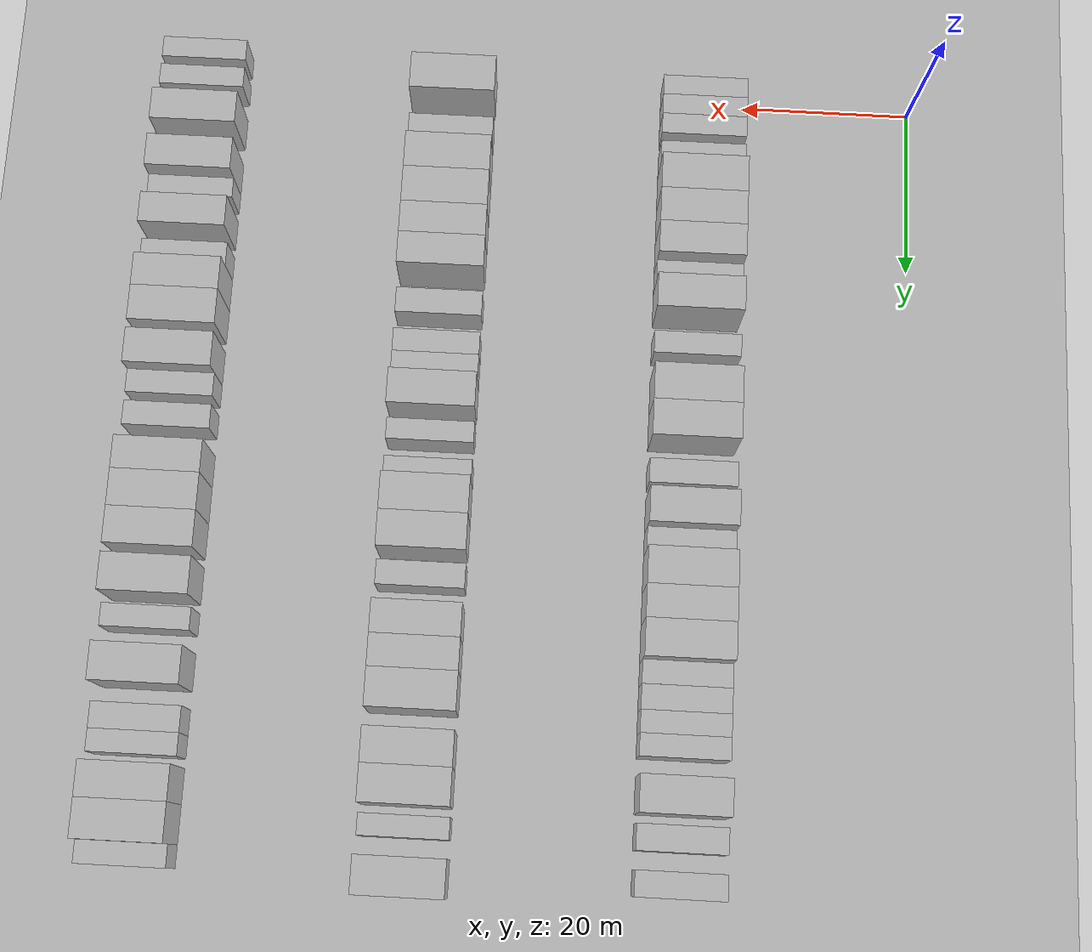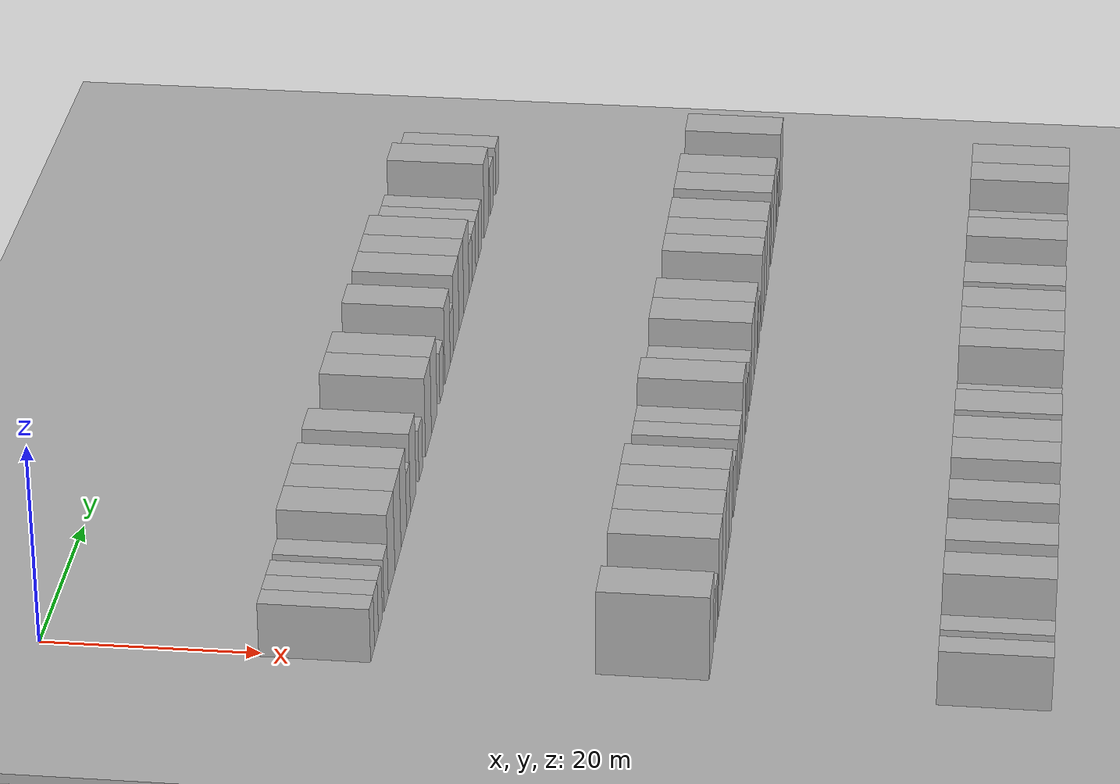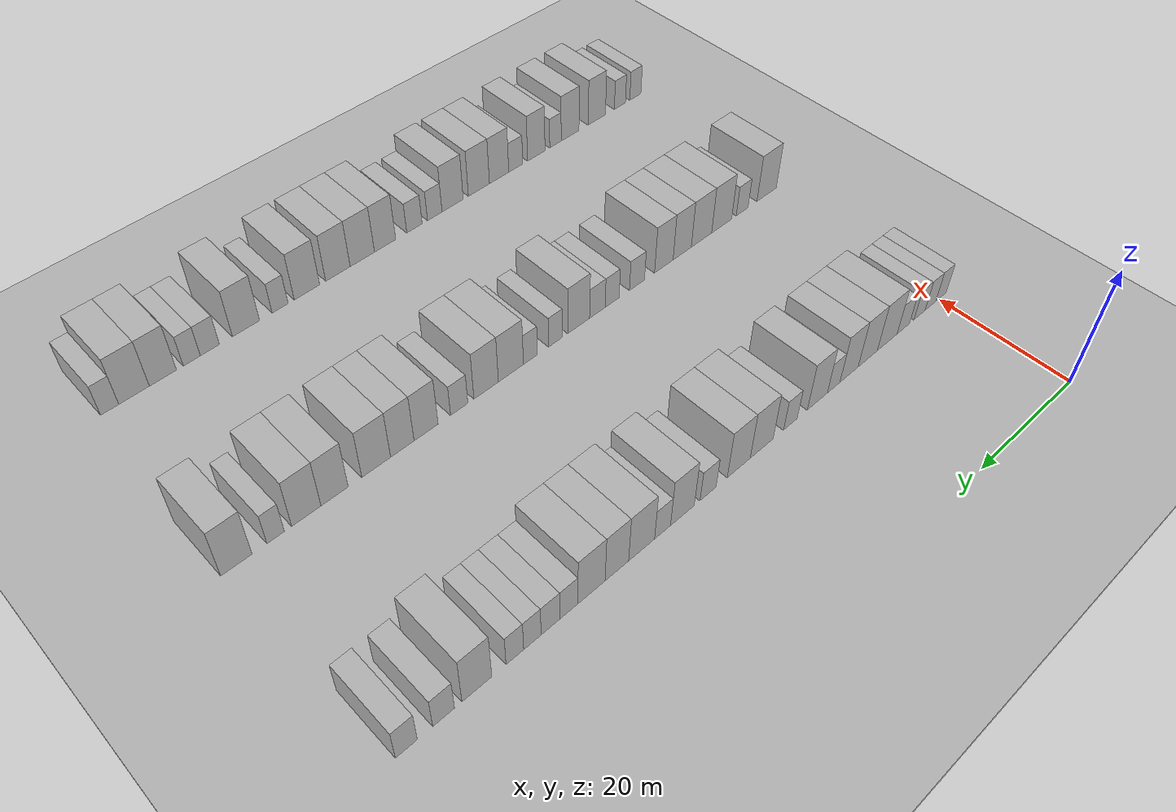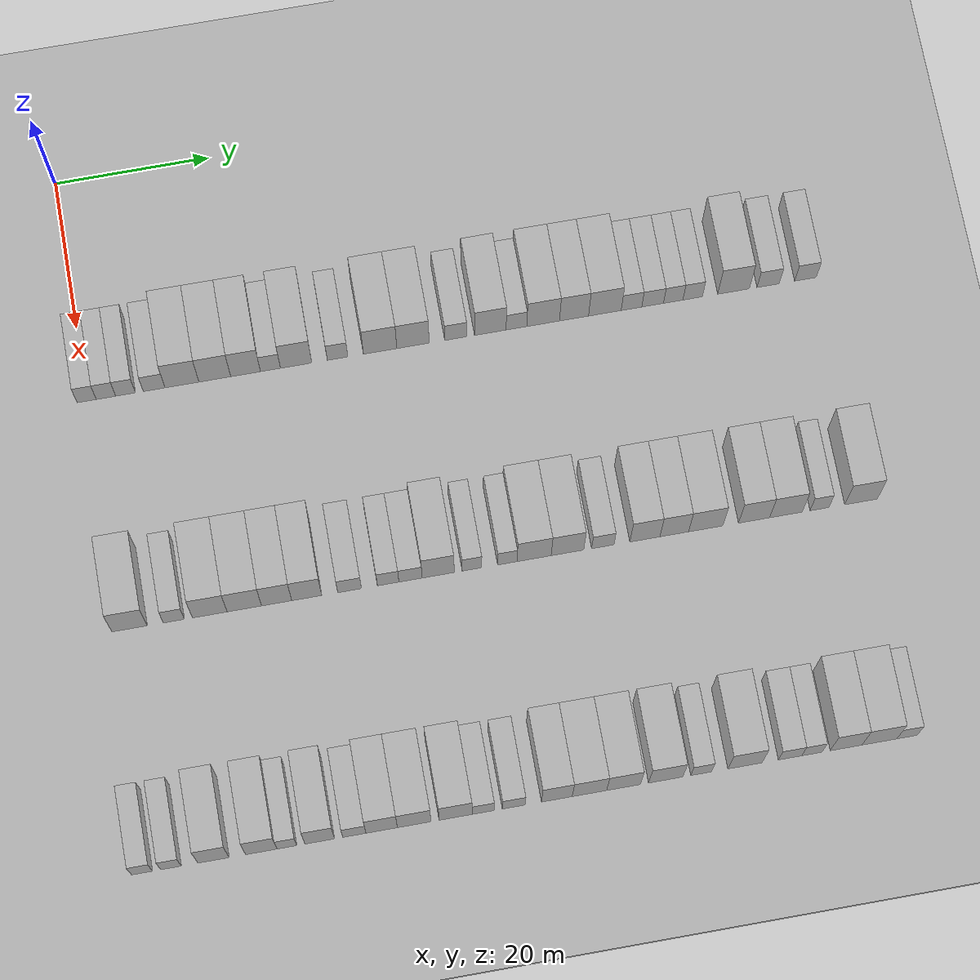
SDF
<sdf version="1.6">
 <world name="default">
  <include><name>ground_plane_1</name><uri>model://HANNAS_ground_plane</uri></include>
  <include>
   <name>ground_plane_2</name>
   <uri>model://HANNAS_ground_plane</uri>
   <pose>100 0 0  0 0 0</pose>
  </include>
  <model name="building_74">
   <static>1</static>
   <pose>25.0000 -0.0359 0 0.000000 0.000000 0.000000</pose>
   <link name="link">
    <pose>0 0 3.00 0 0 0</pose>
    <collision name="collision"><geometry><box><size>10.0000 2.4319 6.0000</size></box></geometry></collision>
    <visual name="visual">
     <cast_shadows>0</cast_shadows>
     <geometry><box><size>10.0000 2.4319 6.0000</size></box></geometry>
     <material>
      <script>
       <uri>model://HANNAS_wall/materials/scripts</uri>
       <uri>model://HANNAS_wall/materials/textures</uri>
       <name>vrc/HANNAS_wall</name>
      </script>
     </material>
    </visual>
   </link>
  </model>
  <model name="building_75">
   <static>1</static>
   <pose>25.0000 2.4158 0 0.000000 0.000000 0.000000</pose>
   <link name="link">
    <pose>0 0 3.00 0 0 0</pose>
    <collision name="collision"><geometry><box><size>10.0000 2.4715 6.0000</size></box></geometry></collision>
    <visual name="visual">
     <cast_shadows>0</cast_shadows>
     <geometry><box><size>10.0000 2.4715 6.0000</size></box></geometry>
     <material>
      <script>
       <uri>model://HANNAS_wall/materials/scripts</uri>
       <uri>model://HANNAS_wall/materials/textures</uri>
       <name>vrc/HANNAS_wall</name>
      </script>
     </material>
    </visual>
   </link>
  </model>
  <model name="building_76">
   <static>1</static>
   <pose>25.0000 4.9023 0 0.000000 0.000000 0.000000</pose>
   <link name="link">
    <pose>0 0 3.00 0 0 0</pose>
    <collision name="collision"><geometry><box><size>10.0000 2.5016 6.0000</size></box></geometry></collision>
    <visual name="visual">
     <cast_shadows>0</cast_shadows>
     <geometry><box><size>10.0000 2.5016 6.0000</size></box></geometry>
     <material>
      <script>
       <uri>model://HANNAS_wall/materials/scripts</uri>
       <uri>model://HANNAS_wall/materials/textures</uri>
       <name>vrc/HANNAS_wall</name>
      </script>
     </material>
    </visual>
   </link>
  </model>
  <model name="building_77">
   <static>1</static>
   <pose>25.0000 8.5384 0 0.000000 0.000000 0.000000</pose>
   <link name="link">
    <pose>0 0 3.00 0 0 0</pose>
    <collision name="collision"><geometry><box><size>10.0000 2.7706 6.0000</size></box></geometry></collision>
    <visual name="visual">
     <cast_shadows>0</cast_shadows>
     <geometry><box><size>10.0000 2.7706 6.0000</size></box></geometry>
     <material>
      <script>
       <uri>model://HANNAS_wall/materials/scripts</uri>
       <uri>model://HANNAS_wall/materials/textures</uri>
       <name>vrc/HANNAS_wall</name>
      </script>
     </material>
    </visual>
   </link>
  </model>
  <model name="building_78">
   <static>1</static>
   <pose>25.0000 12.0801 0 0.000000 0.000000 0.000000</pose>
   <link name="link">
    <pose>0 0 4.50 0 0 0</pose>
    <collision name="collision"><geometry><box><size>10.0000 4.3129 9.0000</size></box></geometry></collision>
    <visual name="visual">
     <cast_shadows>0</cast_shadows>
     <geometry><box><size>10.0000 4.3129 9.0000</size></box></geometry>
     <material>
      <script>
       <uri>model://HANNAS_wall/materials/scripts</uri>
       <uri>model://HANNAS_wall/materials/textures</uri>
       <name>vrc/HANNAS_wall</name>
      </script>
     </material>
    </visual>
   </link>
  </model>
  <model name="building_79">
   <static>1</static>
   <pose>25.0000 16.2625 0 0.000000 0.000000 0.000000</pose>
   <link name="link">
    <pose>0 0 4.50 0 0 0</pose>
    <collision name="collision"><geometry><box><size>10.0000 4.0518 9.0000</size></box></geometry></collision>
    <visual name="visual">
     <cast_shadows>0</cast_shadows>
     <geometry><box><size>10.0000 4.0518 9.0000</size></box></geometry>
     <material>
      <script>
       <uri>model://HANNAS_wall/materials/scripts</uri>
       <uri>model://HANNAS_wall/materials/textures</uri>
       <name>vrc/HANNAS_wall</name>
      </script>
     </material>
    </visual>
   </link>
  </model>
  <model name="building_80">
   <static>1</static>
   <pose>25.0000 20.1858 0 0.000000 0.000000 0.000000</pose>
   <link name="link">
    <pose>0 0 4.50 0 0 0</pose>
    <collision name="collision"><geometry><box><size>10.0000 3.7949 9.0000</size></box></geometry></collision>
    <visual name="visual">
     <cast_shadows>0</cast_shadows>
     <geometry><box><size>10.0000 3.7949 9.0000</size></box></geometry>
     <material>
      <script>
       <uri>model://HANNAS_wall/materials/scripts</uri>
       <uri>model://HANNAS_wall/materials/textures</uri>
       <name>vrc/HANNAS_wall</name>
      </script>
     </material>
    </visual>
   </link>
  </model>
  <model name="building_81">
   <static>1</static>
   <pose>25.0000 23.3574 0 0.000000 0.000000 0.000000</pose>
   <link name="link">
    <pose>0 0 3.00 0 0 0</pose>
    <collision name="collision"><geometry><box><size>10.0000 2.5484 6.0000</size></box></geometry></collision>
    <visual name="visual">
     <cast_shadows>0</cast_shadows>
     <geometry><box><size>10.0000 2.5484 6.0000</size></box></geometry>
     <material>
      <script>
       <uri>model://HANNAS_wall/materials/scripts</uri>
       <uri>model://HANNAS_wall/materials/textures</uri>
       <name>vrc/HANNAS_wall</name>
      </script>
     </material>
    </visual>
   </link>
  </model>
  <model name="building_82">
   <static>1</static>
   <pose>25.0000 26.6310 0 0.000000 0.000000 0.000000</pose>
   <link name="link">
    <pose>0 0 4.50 0 0 0</pose>
    <collision name="collision"><geometry><box><size>10.0000 3.9988 9.0000</size></box></geometry></collision>
    <visual name="visual">
     <cast_shadows>0</cast_shadows>
     <geometry><box><size>10.0000 3.9988 9.0000</size></box></geometry>
     <material>
      <script>
       <uri>model://HANNAS_wall/materials/scripts</uri>
       <uri>model://HANNAS_wall/materials/textures</uri>
       <name>vrc/HANNAS_wall</name>
      </script>
     </material>
    </visual>
   </link>
  </model>
  <model name="building_83">
   <static>1</static>
   <pose>25.0000 31.9393 0 0.000000 0.000000 0.000000</pose>
   <link name="link">
    <pose>0 0 3.00 0 0 0</pose>
    <collision name="collision"><geometry><box><size>10.0000 2.6177 6.0000</size></box></geometry></collision>
    <visual name="visual">
     <cast_shadows>0</cast_shadows>
     <geometry><box><size>10.0000 2.6177 6.0000</size></box></geometry>
     <material>
      <script>
       <uri>model://HANNAS_wall/materials/scripts</uri>
       <uri>model://HANNAS_wall/materials/textures</uri>
       <name>vrc/HANNAS_wall</name>
      </script>
     </material>
    </visual>
   </link>
  </model>
  <model name="building_84">
   <static>1</static>
   <pose>25.0000 37.3877 0 0.000000 0.000000 0.000000</pose>
   <link name="link">
    <pose>0 0 4.50 0 0 0</pose>
    <collision name="collision"><geometry><box><size>10.0000 4.2791 9.0000</size></box></geometry></collision>
    <visual name="visual">
     <cast_shadows>0</cast_shadows>
     <geometry><box><size>10.0000 4.2791 9.0000</size></box></geometry>
     <material>
      <script>
       <uri>model://HANNAS_wall/materials/scripts</uri>
       <uri>model://HANNAS_wall/materials/textures</uri>
       <name>vrc/HANNAS_wall</name>
      </script>
     </material>
    </visual>
   </link>
  </model>
  <model name="building_85">
   <static>1</static>
   <pose>25.0000 41.6053 0 0.000000 0.000000 0.000000</pose>
   <link name="link">
    <pose>0 0 4.50 0 0 0</pose>
    <collision name="collision"><geometry><box><size>10.0000 4.1560 9.0000</size></box></geometry></collision>
    <visual name="visual">
     <cast_shadows>0</cast_shadows>
     <geometry><box><size>10.0000 4.1560 9.0000</size></box></geometry>
     <material>
      <script>
       <uri>model://HANNAS_wall/materials/scripts</uri>
       <uri>model://HANNAS_wall/materials/textures</uri>
       <name>vrc/HANNAS_wall</name>
      </script>
     </material>
    </visual>
   </link>
  </model>
  <model name="building_86">
   <static>1</static>
   <pose>25.0000 47.0972 0 0.000000 0.000000 0.000000</pose>
   <link name="link">
    <pose>0 0 3.00 0 0 0</pose>
    <collision name="collision"><geometry><box><size>10.0000 2.8278 6.0000</size></box></geometry></collision>
    <visual name="visual">
     <cast_shadows>0</cast_shadows>
     <geometry><box><size>10.0000 2.8278 6.0000</size></box></geometry>
     <material>
      <script>
       <uri>model://HANNAS_wall/materials/scripts</uri>
       <uri>model://HANNAS_wall/materials/textures</uri>
       <name>vrc/HANNAS_wall</name>
      </script>
     </material>
    </visual>
   </link>
  </model>
  <model name="building_87">
   <static>1</static>
   <pose>25.0000 51.5364 0 0.000000 0.000000 0.000000</pose>
   <link name="link">
    <pose>0 0 4.50 0 0 0</pose>
    <collision name="collision"><geometry><box><size>10.0000 4.0506 9.0000</size></box></geometry></collision>
    <visual name="visual">
     <cast_shadows>0</cast_shadows>
     <geometry><box><size>10.0000 4.0506 9.0000</size></box></geometry>
     <material>
      <script>
       <uri>model://HANNAS_wall/materials/scripts</uri>
       <uri>model://HANNAS_wall/materials/textures</uri>
       <name>vrc/HANNAS_wall</name>
      </script>
     </material>
    </visual>
   </link>
  </model>
  <model name="building_88">
   <static>1</static>
   <pose>25.0000 54.8929 0 0.000000 0.000000 0.000000</pose>
   <link name="link">
    <pose>0 0 3.00 0 0 0</pose>
    <collision name="collision"><geometry><box><size>10.0000 2.6623 6.0000</size></box></geometry></collision>
    <visual name="visual">
     <cast_shadows>0</cast_shadows>
     <geometry><box><size>10.0000 2.6623 6.0000</size></box></geometry>
     <material>
      <script>
       <uri>model://HANNAS_wall/materials/scripts</uri>
       <uri>model://HANNAS_wall/materials/textures</uri>
       <name>vrc/HANNAS_wall</name>
      </script>
     </material>
    </visual>
   </link>
  </model>
  <model name="building_89">
   <static>1</static>
   <pose>25.0000 58.3360 0 0.000000 0.000000 0.000000</pose>
   <link name="link">
    <pose>0 0 4.50 0 0 0</pose>
    <collision name="collision"><geometry><box><size>10.0000 4.2240 9.0000</size></box></geometry></collision>
    <visual name="visual">
     <cast_shadows>0</cast_shadows>
     <geometry><box><size>10.0000 4.2240 9.0000</size></box></geometry>
     <material>
      <script>
       <uri>model://HANNAS_wall/materials/scripts</uri>
       <uri>model://HANNAS_wall/materials/textures</uri>
       <name>vrc/HANNAS_wall</name>
      </script>
     </material>
    </visual>
   </link>
  </model>
  <model name="building_90">
   <static>1</static>
   <pose>25.0000 62.3223 0 0.000000 0.000000 0.000000</pose>
   <link name="link">
    <pose>0 0 4.50 0 0 0</pose>
    <collision name="collision"><geometry><box><size>10.0000 3.7485 9.0000</size></box></geometry></collision>
    <visual name="visual">
     <cast_shadows>0</cast_shadows>
     <geometry><box><size>10.0000 3.7485 9.0000</size></box></geometry>
     <material>
      <script>
       <uri>model://HANNAS_wall/materials/scripts</uri>
       <uri>model://HANNAS_wall/materials/textures</uri>
       <name>vrc/HANNAS_wall</name>
      </script>
     </material>
    </visual>
   </link>
  </model>
  <model name="building_91">
   <static>1</static>
   <pose>25.0000 66.3068 0 0.000000 0.000000 0.000000</pose>
   <link name="link">
    <pose>0 0 4.50 0 0 0</pose>
    <collision name="collision"><geometry><box><size>10.0000 4.2204 9.0000</size></box></geometry></collision>
    <visual name="visual">
     <cast_shadows>0</cast_shadows>
     <geometry><box><size>10.0000 4.2204 9.0000</size></box></geometry>
     <material>
      <script>
       <uri>model://HANNAS_wall/materials/scripts</uri>
       <uri>model://HANNAS_wall/materials/textures</uri>
       <name>vrc/HANNAS_wall</name>
      </script>
     </material>
    </visual>
   </link>
  </model>
  <model name="building_92">
   <static>1</static>
   <pose>25.0000 69.7517 0 0.000000 0.000000 0.000000</pose>
   <link name="link">
    <pose>0 0 3.00 0 0 0</pose>
    <collision name="collision"><geometry><box><size>10.0000 2.6695 6.0000</size></box></geometry></collision>
    <visual name="visual">
     <cast_shadows>0</cast_shadows>
     <geometry><box><size>10.0000 2.6695 6.0000</size></box></geometry>
     <material>
      <script>
       <uri>model://HANNAS_wall/materials/scripts</uri>
       <uri>model://HANNAS_wall/materials/textures</uri>
       <name>vrc/HANNAS_wall</name>
      </script>
     </material>
    </visual>
   </link>
  </model>
  <model name="building_93">
   <static>1</static>
   <pose>25.0000 72.4866 0 0.000000 0.000000 0.000000</pose>
   <link name="link">
    <pose>0 0 3.00 0 0 0</pose>
    <collision name="collision"><geometry><box><size>10.0000 2.8002 6.0000</size></box></geometry></collision>
    <visual name="visual">
     <cast_shadows>0</cast_shadows>
     <geometry><box><size>10.0000 2.8002 6.0000</size></box></geometry>
     <material>
      <script>
       <uri>model://HANNAS_wall/materials/scripts</uri>
       <uri>model://HANNAS_wall/materials/textures</uri>
       <name>vrc/HANNAS_wall</name>
      </script>
     </material>
    </visual>
   </link>
  </model>
  <model name="building_94">
   <static>1</static>
   <pose>25.0000 75.1481 0 0.000000 0.000000 0.000000</pose>
   <link name="link">
    <pose>0 0 3.00 0 0 0</pose>
    <collision name="collision"><geometry><box><size>10.0000 2.5230 6.0000</size></box></geometry></collision>
    <visual name="visual">
     <cast_shadows>0</cast_shadows>
     <geometry><box><size>10.0000 2.5230 6.0000</size></box></geometry>
     <material>
      <script>
       <uri>model://HANNAS_wall/materials/scripts</uri>
       <uri>model://HANNAS_wall/materials/textures</uri>
       <name>vrc/HANNAS_wall</name>
      </script>
     </material>
    </visual>
   </link>
  </model>
  <model name="building_95">
   <static>1</static>
   <pose>25.0000 77.6683 0 0.000000 0.000000 0.000000</pose>
   <link name="link">
    <pose>0 0 3.00 0 0 0</pose>
    <collision name="collision"><geometry><box><size>10.0000 2.5172 6.0000</size></box></geometry></collision>
    <visual name="visual">
     <cast_shadows>0</cast_shadows>
     <geometry><box><size>10.0000 2.5172 6.0000</size></box></geometry>
     <material>
      <script>
       <uri>model://HANNAS_wall/materials/scripts</uri>
       <uri>model://HANNAS_wall/materials/textures</uri>
       <name>vrc/HANNAS_wall</name>
      </script>
     </material>
    </visual>
   </link>
  </model>
  <model name="building_96">
   <static>1</static>
   <pose>25.0000 82.9756 0 0.000000 0.000000 0.000000</pose>
   <link name="link">
    <pose>0 0 4.50 0 0 0</pose>
    <collision name="collision"><geometry><box><size>10.0000 4.0974 9.0000</size></box></geometry></collision>
    <visual name="visual">
     <cast_shadows>0</cast_shadows>
     <geometry><box><size>10.0000 4.0974 9.0000</size></box></geometry>
     <material>
      <script>
       <uri>model://HANNAS_wall/materials/scripts</uri>
       <uri>model://HANNAS_wall/materials/textures</uri>
       <name>vrc/HANNAS_wall</name>
      </script>
     </material>
    </visual>
   </link>
  </model>
  <model name="building_97">
   <static>1</static>
   <pose>25.0000 87.4701 0 0.000000 0.000000 0.000000</pose>
   <link name="link">
    <pose>0 0 3.00 0 0 0</pose>
    <collision name="collision"><geometry><box><size>10.0000 2.8916 6.0000</size></box></geometry></collision>
    <visual name="visual">
     <cast_shadows>0</cast_shadows>
     <geometry><box><size>10.0000 2.8916 6.0000</size></box></geometry>
     <material>
      <script>
       <uri>model://HANNAS_wall/materials/scripts</uri>
       <uri>model://HANNAS_wall/materials/textures</uri>
       <name>vrc/HANNAS_wall</name>
      </script>
     </material>
    </visual>
   </link>
  </model>
  <model name="building_98">
   <static>1</static>
   <pose>25.0000 92.3277 0 0.000000 0.000000 0.000000</pose>
   <link name="link">
    <pose>0 0 3.00 0 0 0</pose>
    <collision name="collision"><geometry><box><size>10.0000 2.8236 6.0000</size></box></geometry></collision>
    <visual name="visual">
     <cast_shadows>0</cast_shadows>
     <geometry><box><size>10.0000 2.8236 6.0000</size></box></geometry>
     <material>
      <script>
       <uri>model://HANNAS_wall/materials/scripts</uri>
       <uri>model://HANNAS_wall/materials/textures</uri>
       <name>vrc/HANNAS_wall</name>
      </script>
     </material>
    </visual>
   </link>
  </model>
  <model name="building_215">
   <static>1</static>
   <pose>55.0000 1.0779 0 0.000000 0.000000 0.000000</pose>
   <link name="link">
    <pose>0 0 4.50 0 0 0</pose>
    <collision name="collision"><geometry><box><size>10.0000 4.3958 9.0000</size></box></geometry></collision>
    <visual name="visual">
     <cast_shadows>0</cast_shadows>
     <geometry><box><size>10.0000 4.3958 9.0000</size></box></geometry>
     <material>
      <script>
       <uri>model://HANNAS_wall/materials/scripts</uri>
       <uri>model://HANNAS_wall/materials/textures</uri>
       <name>vrc/HANNAS_wall</name>
      </script>
     </material>
    </visual>
   </link>
  </model>
  <model name="building_216">
   <static>1</static>
   <pose>55.0000 6.5831 0 0.000000 0.000000 0.000000</pose>
   <link name="link">
    <pose>0 0 3.00 0 0 0</pose>
    <collision name="collision"><geometry><box><size>10.0000 2.6146 6.0000</size></box></geometry></collision>
    <visual name="visual">
     <cast_shadows>0</cast_shadows>
     <geometry><box><size>10.0000 2.6146 6.0000</size></box></geometry>
     <material>
      <script>
       <uri>model://HANNAS_wall/materials/scripts</uri>
       <uri>model://HANNAS_wall/materials/textures</uri>
       <name>vrc/HANNAS_wall</name>
      </script>
     </material>
    </visual>
   </link>
  </model>
  <model name="building_217">
   <static>1</static>
   <pose>55.0000 11.0484 0 0.000000 0.000000 0.000000</pose>
   <link name="link">
    <pose>0 0 4.50 0 0 0</pose>
    <collision name="collision"><geometry><box><size>10.0000 4.3160 9.0000</size></box></geometry></collision>
    <visual name="visual">
     <cast_shadows>0</cast_shadows>
     <geometry><box><size>10.0000 4.3160 9.0000</size></box></geometry>
     <material>
      <script>
       <uri>model://HANNAS_wall/materials/scripts</uri>
       <uri>model://HANNAS_wall/materials/textures</uri>
       <name>vrc/HANNAS_wall</name>
      </script>
     </material>
    </visual>
   </link>
  </model>
  <model name="building_218">
   <static>1</static>
   <pose>55.0000 15.3538 0 0.000000 0.000000 0.000000</pose>
   <link name="link">
    <pose>0 0 4.50 0 0 0</pose>
    <collision name="collision"><geometry><box><size>10.0000 4.2948 9.0000</size></box></geometry></collision>
    <visual name="visual">
     <cast_shadows>0</cast_shadows>
     <geometry><box><size>10.0000 4.2948 9.0000</size></box></geometry>
     <material>
      <script>
       <uri>model://HANNAS_wall/materials/scripts</uri>
       <uri>model://HANNAS_wall/materials/textures</uri>
       <name>vrc/HANNAS_wall</name>
      </script>
     </material>
    </visual>
   </link>
  </model>
  <model name="building_219">
   <static>1</static>
   <pose>55.0000 19.3810 0 0.000000 0.000000 0.000000</pose>
   <link name="link">
    <pose>0 0 4.50 0 0 0</pose>
    <collision name="collision"><geometry><box><size>10.0000 3.7595 9.0000</size></box></geometry></collision>
    <visual name="visual">
     <cast_shadows>0</cast_shadows>
     <geometry><box><size>10.0000 3.7595 9.0000</size></box></geometry>
     <material>
      <script>
       <uri>model://HANNAS_wall/materials/scripts</uri>
       <uri>model://HANNAS_wall/materials/textures</uri>
       <name>vrc/HANNAS_wall</name>
      </script>
     </material>
    </visual>
   </link>
  </model>
  <model name="building_220">
   <static>1</static>
   <pose>55.0000 23.1318 0 0.000000 0.000000 0.000000</pose>
   <link name="link">
    <pose>0 0 4.50 0 0 0</pose>
    <collision name="collision"><geometry><box><size>10.0000 3.7421 9.0000</size></box></geometry></collision>
    <visual name="visual">
     <cast_shadows>0</cast_shadows>
     <geometry><box><size>10.0000 3.7421 9.0000</size></box></geometry>
     <material>
      <script>
       <uri>model://HANNAS_wall/materials/scripts</uri>
       <uri>model://HANNAS_wall/materials/textures</uri>
       <name>vrc/HANNAS_wall</name>
      </script>
     </material>
    </visual>
   </link>
  </model>
  <model name="building_221">
   <static>1</static>
   <pose>55.0000 28.4827 0 0.000000 0.000000 0.000000</pose>
   <link name="link">
    <pose>0 0 3.00 0 0 0</pose>
    <collision name="collision"><geometry><box><size>10.0000 2.9597 6.0000</size></box></geometry></collision>
    <visual name="visual">
     <cast_shadows>0</cast_shadows>
     <geometry><box><size>10.0000 2.9597 6.0000</size></box></geometry>
     <material>
      <script>
       <uri>model://HANNAS_wall/materials/scripts</uri>
       <uri>model://HANNAS_wall/materials/textures</uri>
       <name>vrc/HANNAS_wall</name>
      </script>
     </material>
    </visual>
   </link>
  </model>
  <model name="building_222">
   <static>1</static>
   <pose>55.0000 33.3038 0 0.000000 0.000000 0.000000</pose>
   <link name="link">
    <pose>0 0 3.00 0 0 0</pose>
    <collision name="collision"><geometry><box><size>10.0000 2.6826 6.0000</size></box></geometry></collision>
    <visual name="visual">
     <cast_shadows>0</cast_shadows>
     <geometry><box><size>10.0000 2.6826 6.0000</size></box></geometry>
     <material>
      <script>
       <uri>model://HANNAS_wall/materials/scripts</uri>
       <uri>model://HANNAS_wall/materials/textures</uri>
       <name>vrc/HANNAS_wall</name>
      </script>
     </material>
    </visual>
   </link>
  </model>
  <model name="building_223">
   <static>1</static>
   <pose>55.0000 36.1029 0 0.000000 0.000000 0.000000</pose>
   <link name="link">
    <pose>0 0 3.00 0 0 0</pose>
    <collision name="collision"><geometry><box><size>10.0000 2.9155 6.0000</size></box></geometry></collision>
    <visual name="visual">
     <cast_shadows>0</cast_shadows>
     <geometry><box><size>10.0000 2.9155 6.0000</size></box></geometry>
     <material>
      <script>
       <uri>model://HANNAS_wall/materials/scripts</uri>
       <uri>model://HANNAS_wall/materials/textures</uri>
       <name>vrc/HANNAS_wall</name>
      </script>
     </material>
    </visual>
   </link>
  </model>
  <model name="building_224">
   <static>1</static>
   <pose>55.0000 39.5779 0 0.000000 0.000000 0.000000</pose>
   <link name="link">
    <pose>0 0 4.50 0 0 0</pose>
    <collision name="collision"><geometry><box><size>10.0000 4.0345 9.0000</size></box></geometry></collision>
    <visual name="visual">
     <cast_shadows>0</cast_shadows>
     <geometry><box><size>10.0000 4.0345 9.0000</size></box></geometry>
     <material>
      <script>
       <uri>model://HANNAS_wall/materials/scripts</uri>
       <uri>model://HANNAS_wall/materials/textures</uri>
       <name>vrc/HANNAS_wall</name>
      </script>
     </material>
    </visual>
   </link>
  </model>
  <model name="building_225">
   <static>1</static>
   <pose>55.0000 43.8187 0 0.000000 0.000000 0.000000</pose>
   <link name="link">
    <pose>0 0 3.00 0 0 0</pose>
    <collision name="collision"><geometry><box><size>10.0000 2.4470 6.0000</size></box></geometry></collision>
    <visual name="visual">
     <cast_shadows>0</cast_shadows>
     <geometry><box><size>10.0000 2.4470 6.0000</size></box></geometry>
     <material>
      <script>
       <uri>model://HANNAS_wall/materials/scripts</uri>
       <uri>model://HANNAS_wall/materials/textures</uri>
       <name>vrc/HANNAS_wall</name>
      </script>
     </material>
    </visual>
   </link>
  </model>
  <model name="building_226">
   <static>1</static>
   <pose>55.0000 48.2606 0 0.000000 0.000000 0.000000</pose>
   <link name="link">
    <pose>0 0 3.00 0 0 0</pose>
    <collision name="collision"><geometry><box><size>10.0000 2.4369 6.0000</size></box></geometry></collision>
    <visual name="visual">
     <cast_shadows>0</cast_shadows>
     <geometry><box><size>10.0000 2.4369 6.0000</size></box></geometry>
     <material>
      <script>
       <uri>model://HANNAS_wall/materials/scripts</uri>
       <uri>model://HANNAS_wall/materials/textures</uri>
       <name>vrc/HANNAS_wall</name>
      </script>
     </material>
    </visual>
   </link>
  </model>
  <model name="building_227">
   <static>1</static>
   <pose>55.0000 51.6314 0 0.000000 0.000000 0.000000</pose>
   <link name="link">
    <pose>0 0 4.50 0 0 0</pose>
    <collision name="collision"><geometry><box><size>10.0000 4.3045 9.0000</size></box></geometry></collision>
    <visual name="visual">
     <cast_shadows>0</cast_shadows>
     <geometry><box><size>10.0000 4.3045 9.0000</size></box></geometry>
     <material>
      <script>
       <uri>model://HANNAS_wall/materials/scripts</uri>
       <uri>model://HANNAS_wall/materials/textures</uri>
       <name>vrc/HANNAS_wall</name>
      </script>
     </material>
    </visual>
   </link>
  </model>
  <model name="building_228">
   <static>1</static>
   <pose>55.0000 55.8353 0 0.000000 0.000000 0.000000</pose>
   <link name="link">
    <pose>0 0 4.50 0 0 0</pose>
    <collision name="collision"><geometry><box><size>10.0000 4.1033 9.0000</size></box></geometry></collision>
    <visual name="visual">
     <cast_shadows>0</cast_shadows>
     <geometry><box><size>10.0000 4.1033 9.0000</size></box></geometry>
     <material>
      <script>
       <uri>model://HANNAS_wall/materials/scripts</uri>
       <uri>model://HANNAS_wall/materials/textures</uri>
       <name>vrc/HANNAS_wall</name>
      </script>
     </material>
    </visual>
   </link>
  </model>
  <model name="building_229">
   <static>1</static>
   <pose>55.0000 60.2951 0 0.000000 0.000000 0.000000</pose>
   <link name="link">
    <pose>0 0 3.00 0 0 0</pose>
    <collision name="collision"><geometry><box><size>10.0000 2.8163 6.0000</size></box></geometry></collision>
    <visual name="visual">
     <cast_shadows>0</cast_shadows>
     <geometry><box><size>10.0000 2.8163 6.0000</size></box></geometry>
     <material>
      <script>
       <uri>model://HANNAS_wall/materials/scripts</uri>
       <uri>model://HANNAS_wall/materials/textures</uri>
       <name>vrc/HANNAS_wall</name>
      </script>
     </material>
    </visual>
   </link>
  </model>
  <model name="building_230">
   <static>1</static>
   <pose>55.0000 65.5990 0 0.000000 0.000000 0.000000</pose>
   <link name="link">
    <pose>0 0 4.50 0 0 0</pose>
    <collision name="collision"><geometry><box><size>10.0000 3.7915 9.0000</size></box></geometry></collision>
    <visual name="visual">
     <cast_shadows>0</cast_shadows>
     <geometry><box><size>10.0000 3.7915 9.0000</size></box></geometry>
     <material>
      <script>
       <uri>model://HANNAS_wall/materials/scripts</uri>
       <uri>model://HANNAS_wall/materials/textures</uri>
       <name>vrc/HANNAS_wall</name>
      </script>
     </material>
    </visual>
   </link>
  </model>
  <model name="building_231">
   <static>1</static>
   <pose>55.0000 69.3093 0 0.000000 0.000000 0.000000</pose>
   <link name="link">
    <pose>0 0 4.50 0 0 0</pose>
    <collision name="collision"><geometry><box><size>10.0000 3.6291 9.0000</size></box></geometry></collision>
    <visual name="visual">
     <cast_shadows>0</cast_shadows>
     <geometry><box><size>10.0000 3.6291 9.0000</size></box></geometry>
     <material>
      <script>
       <uri>model://HANNAS_wall/materials/scripts</uri>
       <uri>model://HANNAS_wall/materials/textures</uri>
       <name>vrc/HANNAS_wall</name>
      </script>
     </material>
    </visual>
   </link>
  </model>
  <model name="building_232">
   <static>1</static>
   <pose>55.0000 73.2910 0 0.000000 0.000000 0.000000</pose>
   <link name="link">
    <pose>0 0 4.50 0 0 0</pose>
    <collision name="collision"><geometry><box><size>10.0000 4.3344 9.0000</size></box></geometry></collision>
    <visual name="visual">
     <cast_shadows>0</cast_shadows>
     <geometry><box><size>10.0000 4.3344 9.0000</size></box></geometry>
     <material>
      <script>
       <uri>model://HANNAS_wall/materials/scripts</uri>
       <uri>model://HANNAS_wall/materials/textures</uri>
       <name>vrc/HANNAS_wall</name>
      </script>
     </material>
    </visual>
   </link>
  </model>
  <model name="building_233">
   <static>1</static>
   <pose>55.0000 79.4311 0 0.000000 0.000000 0.000000</pose>
   <link name="link">
    <pose>0 0 4.50 0 0 0</pose>
    <collision name="collision"><geometry><box><size>10.0000 3.9458 9.0000</size></box></geometry></collision>
    <visual name="visual">
     <cast_shadows>0</cast_shadows>
     <geometry><box><size>10.0000 3.9458 9.0000</size></box></geometry>
     <material>
      <script>
       <uri>model://HANNAS_wall/materials/scripts</uri>
       <uri>model://HANNAS_wall/materials/textures</uri>
       <name>vrc/HANNAS_wall</name>
      </script>
     </material>
    </visual>
   </link>
  </model>
  <model name="building_234">
   <static>1</static>
   <pose>55.0000 83.4708 0 0.000000 0.000000 0.000000</pose>
   <link name="link">
    <pose>0 0 4.50 0 0 0</pose>
    <collision name="collision"><geometry><box><size>10.0000 4.1337 9.0000</size></box></geometry></collision>
    <visual name="visual">
     <cast_shadows>0</cast_shadows>
     <geometry><box><size>10.0000 4.1337 9.0000</size></box></geometry>
     <material>
      <script>
       <uri>model://HANNAS_wall/materials/scripts</uri>
       <uri>model://HANNAS_wall/materials/textures</uri>
       <name>vrc/HANNAS_wall</name>
      </script>
     </material>
    </visual>
   </link>
  </model>
  <model name="building_235">
   <static>1</static>
   <pose>55.0000 87.7391 0 0.000000 0.000000 0.000000</pose>
   <link name="link">
    <pose>0 0 3.00 0 0 0</pose>
    <collision name="collision"><geometry><box><size>10.0000 2.4030 6.0000</size></box></geometry></collision>
    <visual name="visual">
     <cast_shadows>0</cast_shadows>
     <geometry><box><size>10.0000 2.4030 6.0000</size></box></geometry>
     <material>
      <script>
       <uri>model://HANNAS_wall/materials/scripts</uri>
       <uri>model://HANNAS_wall/materials/textures</uri>
       <name>vrc/HANNAS_wall</name>
      </script>
     </material>
    </visual>
   </link>
  </model>
  <model name="building_236">
   <static>1</static>
   <pose>55.0000 93.0221 0 0.000000 0.000000 0.000000</pose>
   <link name="link">
    <pose>0 0 4.50 0 0 0</pose>
    <collision name="collision"><geometry><box><size>10.0000 4.1629 9.0000</size></box></geometry></collision>
    <visual name="visual">
     <cast_shadows>0</cast_shadows>
     <geometry><box><size>10.0000 4.1629 9.0000</size></box></geometry>
     <material>
      <script>
       <uri>model://HANNAS_wall/materials/scripts</uri>
       <uri>model://HANNAS_wall/materials/textures</uri>
       <name>vrc/HANNAS_wall</name>
      </script>
     </material>
    </visual>
   </link>
  </model>
  <model name="building_349">
   <static>1</static>
   <pose>85.0000 -1.7494 0 0.000000 0.000000 0.000000</pose>
   <link name="link">
    <pose>0 0 3.00 0 0 0</pose>
    <collision name="collision"><geometry><box><size>10.0000 2.5420 6.0000</size></box></geometry></collision>
    <visual name="visual">
     <cast_shadows>0</cast_shadows>
     <geometry><box><size>10.0000 2.5420 6.0000</size></box></geometry>
     <material>
      <script>
       <uri>model://HANNAS_wall/materials/scripts</uri>
       <uri>model://HANNAS_wall/materials/textures</uri>
       <name>vrc/HANNAS_wall</name>
      </script>
     </material>
    </visual>
   </link>
  </model>
  <model name="building_350">
   <static>1</static>
   <pose>85.0000 1.7706 0 0.000000 0.000000 0.000000</pose>
   <link name="link">
    <pose>0 0 3.00 0 0 0</pose>
    <collision name="collision"><geometry><box><size>10.0000 2.4978 6.0000</size></box></geometry></collision>
    <visual name="visual">
     <cast_shadows>0</cast_shadows>
     <geometry><box><size>10.0000 2.4978 6.0000</size></box></geometry>
     <material>
      <script>
       <uri>model://HANNAS_wall/materials/scripts</uri>
       <uri>model://HANNAS_wall/materials/textures</uri>
       <name>vrc/HANNAS_wall</name>
      </script>
     </material>
    </visual>
   </link>
  </model>
  <model name="building_351">
   <static>1</static>
   <pose>85.0000 6.9246 0 0.000000 0.000000 0.000000</pose>
   <link name="link">
    <pose>0 0 4.50 0 0 0</pose>
    <collision name="collision"><geometry><box><size>10.0000 3.8102 9.0000</size></box></geometry></collision>
    <visual name="visual">
     <cast_shadows>0</cast_shadows>
     <geometry><box><size>10.0000 3.8102 9.0000</size></box></geometry>
     <material>
      <script>
       <uri>model://HANNAS_wall/materials/scripts</uri>
       <uri>model://HANNAS_wall/materials/textures</uri>
       <name>vrc/HANNAS_wall</name>
      </script>
     </material>
    </visual>
   </link>
  </model>
  <model name="building_352">
   <static>1</static>
   <pose>85.0000 12.7393 0 0.000000 0.000000 0.000000</pose>
   <link name="link">
    <pose>0 0 4.50 0 0 0</pose>
    <collision name="collision"><geometry><box><size>10.0000 3.8193 9.0000</size></box></geometry></collision>
    <visual name="visual">
     <cast_shadows>0</cast_shadows>
     <geometry><box><size>10.0000 3.8193 9.0000</size></box></geometry>
     <material>
      <script>
       <uri>model://HANNAS_wall/materials/scripts</uri>
       <uri>model://HANNAS_wall/materials/textures</uri>
       <name>vrc/HANNAS_wall</name>
      </script>
     </material>
    </visual>
   </link>
  </model>
  <model name="building_353">
   <static>1</static>
   <pose>85.0000 15.8517 0 0.000000 0.000000 0.000000</pose>
   <link name="link">
    <pose>0 0 3.00 0 0 0</pose>
    <collision name="collision"><geometry><box><size>10.0000 2.4054 6.0000</size></box></geometry></collision>
    <visual name="visual">
     <cast_shadows>0</cast_shadows>
     <geometry><box><size>10.0000 2.4054 6.0000</size></box></geometry>
     <material>
      <script>
       <uri>model://HANNAS_wall/materials/scripts</uri>
       <uri>model://HANNAS_wall/materials/textures</uri>
       <name>vrc/HANNAS_wall</name>
      </script>
     </material>
    </visual>
   </link>
  </model>
  <model name="building_354">
   <static>1</static>
   <pose>85.0000 19.8564 0 0.000000 0.000000 0.000000</pose>
   <link name="link">
    <pose>0 0 4.50 0 0 0</pose>
    <collision name="collision"><geometry><box><size>10.0000 3.6040 9.0000</size></box></geometry></collision>
    <visual name="visual">
     <cast_shadows>0</cast_shadows>
     <geometry><box><size>10.0000 3.6040 9.0000</size></box></geometry>
     <material>
      <script>
       <uri>model://HANNAS_wall/materials/scripts</uri>
       <uri>model://HANNAS_wall/materials/textures</uri>
       <name>vrc/HANNAS_wall</name>
      </script>
     </material>
    </visual>
   </link>
  </model>
  <model name="building_355">
   <static>1</static>
   <pose>85.0000 24.0698 0 0.000000 0.000000 0.000000</pose>
   <link name="link">
    <pose>0 0 3.00 0 0 0</pose>
    <collision name="collision"><geometry><box><size>10.0000 2.8229 6.0000</size></box></geometry></collision>
    <visual name="visual">
     <cast_shadows>0</cast_shadows>
     <geometry><box><size>10.0000 2.8229 6.0000</size></box></geometry>
     <material>
      <script>
       <uri>model://HANNAS_wall/materials/scripts</uri>
       <uri>model://HANNAS_wall/materials/textures</uri>
       <name>vrc/HANNAS_wall</name>
      </script>
     </material>
    </visual>
   </link>
  </model>
  <model name="building_356">
   <static>1</static>
   <pose>85.0000 27.4063 0 0.000000 0.000000 0.000000</pose>
   <link name="link">
    <pose>0 0 4.50 0 0 0</pose>
    <collision name="collision"><geometry><box><size>10.0000 3.8501 9.0000</size></box></geometry></collision>
    <visual name="visual">
     <cast_shadows>0</cast_shadows>
     <geometry><box><size>10.0000 3.8501 9.0000</size></box></geometry>
     <material>
      <script>
       <uri>model://HANNAS_wall/materials/scripts</uri>
       <uri>model://HANNAS_wall/materials/textures</uri>
       <name>vrc/HANNAS_wall</name>
      </script>
     </material>
    </visual>
   </link>
  </model>
  <model name="building_357">
   <static>1</static>
   <pose>85.0000 31.3855 0 0.000000 0.000000 0.000000</pose>
   <link name="link">
    <pose>0 0 4.50 0 0 0</pose>
    <collision name="collision"><geometry><box><size>10.0000 4.1084 9.0000</size></box></geometry></collision>
    <visual name="visual">
     <cast_shadows>0</cast_shadows>
     <geometry><box><size>10.0000 4.1084 9.0000</size></box></geometry>
     <material>
      <script>
       <uri>model://HANNAS_wall/materials/scripts</uri>
       <uri>model://HANNAS_wall/materials/textures</uri>
       <name>vrc/HANNAS_wall</name>
      </script>
     </material>
    </visual>
   </link>
  </model>
  <model name="building_358">
   <static>1</static>
   <pose>85.0000 36.4564 0 0.000000 0.000000 0.000000</pose>
   <link name="link">
    <pose>0 0 4.50 0 0 0</pose>
    <collision name="collision"><geometry><box><size>10.0000 4.0334 9.0000</size></box></geometry></collision>
    <visual name="visual">
     <cast_shadows>0</cast_shadows>
     <geometry><box><size>10.0000 4.0334 9.0000</size></box></geometry>
     <material>
      <script>
       <uri>model://HANNAS_wall/materials/scripts</uri>
       <uri>model://HANNAS_wall/materials/textures</uri>
       <name>vrc/HANNAS_wall</name>
      </script>
     </material>
    </visual>
   </link>
  </model>
  <model name="building_359">
   <static>1</static>
   <pose>85.0000 39.8267 0 0.000000 0.000000 0.000000</pose>
   <link name="link">
    <pose>0 0 3.00 0 0 0</pose>
    <collision name="collision"><geometry><box><size>10.0000 2.7072 6.0000</size></box></geometry></collision>
    <visual name="visual">
     <cast_shadows>0</cast_shadows>
     <geometry><box><size>10.0000 2.7072 6.0000</size></box></geometry>
     <material>
      <script>
       <uri>model://HANNAS_wall/materials/scripts</uri>
       <uri>model://HANNAS_wall/materials/textures</uri>
       <name>vrc/HANNAS_wall</name>
      </script>
     </material>
    </visual>
   </link>
  </model>
  <model name="building_360">
   <static>1</static>
   <pose>85.0000 43.5863 0 0.000000 0.000000 0.000000</pose>
   <link name="link">
    <pose>0 0 3.00 0 0 0</pose>
    <collision name="collision"><geometry><box><size>10.0000 2.8120 6.0000</size></box></geometry></collision>
    <visual name="visual">
     <cast_shadows>0</cast_shadows>
     <geometry><box><size>10.0000 2.8120 6.0000</size></box></geometry>
     <material>
      <script>
       <uri>model://HANNAS_wall/materials/scripts</uri>
       <uri>model://HANNAS_wall/materials/textures</uri>
       <name>vrc/HANNAS_wall</name>
      </script>
     </material>
    </visual>
   </link>
  </model>
  <model name="building_361">
   <static>1</static>
   <pose>85.0000 48.8822 0 0.000000 0.000000 0.000000</pose>
   <link name="link">
    <pose>0 0 4.50 0 0 0</pose>
    <collision name="collision"><geometry><box><size>10.0000 3.7797 9.0000</size></box></geometry></collision>
    <visual name="visual">
     <cast_shadows>0</cast_shadows>
     <geometry><box><size>10.0000 3.7797 9.0000</size></box></geometry>
     <material>
      <script>
       <uri>model://HANNAS_wall/materials/scripts</uri>
       <uri>model://HANNAS_wall/materials/textures</uri>
       <name>vrc/HANNAS_wall</name>
      </script>
     </material>
    </visual>
   </link>
  </model>
  <model name="building_362">
   <static>1</static>
   <pose>85.0000 52.8899 0 0.000000 0.000000 0.000000</pose>
   <link name="link">
    <pose>0 0 4.50 0 0 0</pose>
    <collision name="collision"><geometry><box><size>10.0000 4.2356 9.0000</size></box></geometry></collision>
    <visual name="visual">
     <cast_shadows>0</cast_shadows>
     <geometry><box><size>10.0000 4.2356 9.0000</size></box></geometry>
     <material>
      <script>
       <uri>model://HANNAS_wall/materials/scripts</uri>
       <uri>model://HANNAS_wall/materials/textures</uri>
       <name>vrc/HANNAS_wall</name>
      </script>
     </material>
    </visual>
   </link>
  </model>
  <model name="building_363">
   <static>1</static>
   <pose>85.0000 57.0934 0 0.000000 0.000000 0.000000</pose>
   <link name="link">
    <pose>0 0 4.50 0 0 0</pose>
    <collision name="collision"><geometry><box><size>10.0000 4.1714 9.0000</size></box></geometry></collision>
    <visual name="visual">
     <cast_shadows>0</cast_shadows>
     <geometry><box><size>10.0000 4.1714 9.0000</size></box></geometry>
     <material>
      <script>
       <uri>model://HANNAS_wall/materials/scripts</uri>
       <uri>model://HANNAS_wall/materials/textures</uri>
       <name>vrc/HANNAS_wall</name>
      </script>
     </material>
    </visual>
   </link>
  </model>
  <model name="building_364">
   <static>1</static>
   <pose>85.0000 62.2889 0 0.000000 0.000000 0.000000</pose>
   <link name="link">
    <pose>0 0 4.50 0 0 0</pose>
    <collision name="collision"><geometry><box><size>10.0000 4.2196 9.0000</size></box></geometry></collision>
    <visual name="visual">
     <cast_shadows>0</cast_shadows>
     <geometry><box><size>10.0000 4.2196 9.0000</size></box></geometry>
     <material>
      <script>
       <uri>model://HANNAS_wall/materials/scripts</uri>
       <uri>model://HANNAS_wall/materials/textures</uri>
       <name>vrc/HANNAS_wall</name>
      </script>
     </material>
    </visual>
   </link>
  </model>
  <model name="building_365">
   <static>1</static>
   <pose>85.0000 66.6871 0 0.000000 0.000000 0.000000</pose>
   <link name="link">
    <pose>0 0 3.00 0 0 0</pose>
    <collision name="collision"><geometry><box><size>10.0000 2.5768 6.0000</size></box></geometry></collision>
    <visual name="visual">
     <cast_shadows>0</cast_shadows>
     <geometry><box><size>10.0000 2.5768 6.0000</size></box></geometry>
     <material>
      <script>
       <uri>model://HANNAS_wall/materials/scripts</uri>
       <uri>model://HANNAS_wall/materials/textures</uri>
       <name>vrc/HANNAS_wall</name>
      </script>
     </material>
    </visual>
   </link>
  </model>
  <model name="building_366">
   <static>1</static>
   <pose>85.0000 72.1012 0 0.000000 0.000000 0.000000</pose>
   <link name="link">
    <pose>0 0 4.50 0 0 0</pose>
    <collision name="collision"><geometry><box><size>10.0000 4.2514 9.0000</size></box></geometry></collision>
    <visual name="visual">
     <cast_shadows>0</cast_shadows>
     <geometry><box><size>10.0000 4.2514 9.0000</size></box></geometry>
     <material>
      <script>
       <uri>model://HANNAS_wall/materials/scripts</uri>
       <uri>model://HANNAS_wall/materials/textures</uri>
       <name>vrc/HANNAS_wall</name>
      </script>
     </material>
    </visual>
   </link>
  </model>
  <model name="building_367">
   <static>1</static>
   <pose>85.0000 77.6820 0 0.000000 0.000000 0.000000</pose>
   <link name="link">
    <pose>0 0 3.00 0 0 0</pose>
    <collision name="collision"><geometry><box><size>10.0000 2.9101 6.0000</size></box></geometry></collision>
    <visual name="visual">
     <cast_shadows>0</cast_shadows>
     <geometry><box><size>10.0000 2.9101 6.0000</size></box></geometry>
     <material>
      <script>
       <uri>model://HANNAS_wall/materials/scripts</uri>
       <uri>model://HANNAS_wall/materials/textures</uri>
       <name>vrc/HANNAS_wall</name>
      </script>
     </material>
    </visual>
   </link>
  </model>
  <model name="building_368">
   <static>1</static>
   <pose>85.0000 80.4021 0 0.000000 0.000000 0.000000</pose>
   <link name="link">
    <pose>0 0 3.00 0 0 0</pose>
    <collision name="collision"><geometry><box><size>10.0000 2.5301 6.0000</size></box></geometry></collision>
    <visual name="visual">
     <cast_shadows>0</cast_shadows>
     <geometry><box><size>10.0000 2.5301 6.0000</size></box></geometry>
     <material>
      <script>
       <uri>model://HANNAS_wall/materials/scripts</uri>
       <uri>model://HANNAS_wall/materials/textures</uri>
       <name>vrc/HANNAS_wall</name>
      </script>
     </material>
    </visual>
   </link>
  </model>
  <model name="building_369">
   <static>1</static>
   <pose>85.0000 84.6423 0 0.000000 0.000000 0.000000</pose>
   <link name="link">
    <pose>0 0 4.50 0 0 0</pose>
    <collision name="collision"><geometry><box><size>10.0000 3.9502 9.0000</size></box></geometry></collision>
    <visual name="visual">
     <cast_shadows>0</cast_shadows>
     <geometry><box><size>10.0000 3.9502 9.0000</size></box></geometry>
     <material>
      <script>
       <uri>model://HANNAS_wall/materials/scripts</uri>
       <uri>model://HANNAS_wall/materials/textures</uri>
       <name>vrc/HANNAS_wall</name>
      </script>
     </material>
    </visual>
   </link>
  </model>
  <model name="building_370">
   <static>1</static>
   <pose>85.0000 88.7880 0 0.000000 0.000000 0.000000</pose>
   <link name="link">
    <pose>0 0 4.50 0 0 0</pose>
    <collision name="collision"><geometry><box><size>10.0000 4.3412 9.0000</size></box></geometry></collision>
    <visual name="visual">
     <cast_shadows>0</cast_shadows>
     <geometry><box><size>10.0000 4.3412 9.0000</size></box></geometry>
     <material>
      <script>
       <uri>model://HANNAS_wall/materials/scripts</uri>
       <uri>model://HANNAS_wall/materials/textures</uri>
       <name>vrc/HANNAS_wall</name>
      </script>
     </material>
    </visual>
   </link>
  </model>
  <model name="building_371">
   <static>1</static>
   <pose>85.0000 92.2283 0 0.000000 0.000000 0.000000</pose>
   <link name="link">
    <pose>0 0 3.00 0 0 0</pose>
    <collision name="collision"><geometry><box><size>10.0000 2.5394 6.0000</size></box></geometry></collision>
    <visual name="visual">
     <cast_shadows>0</cast_shadows>
     <geometry><box><size>10.0000 2.5394 6.0000</size></box></geometry>
     <material>
      <script>
       <uri>model://HANNAS_wall/materials/scripts</uri>
       <uri>model://HANNAS_wall/materials/textures</uri>
       <name>vrc/HANNAS_wall</name>
      </script>
     </material>
    </visual>
   </link>
  </model>
 </world>
</sdf>
